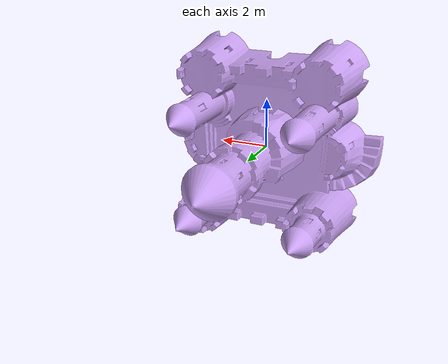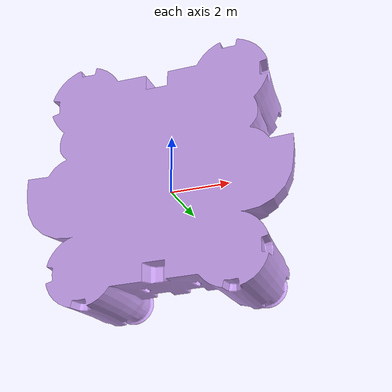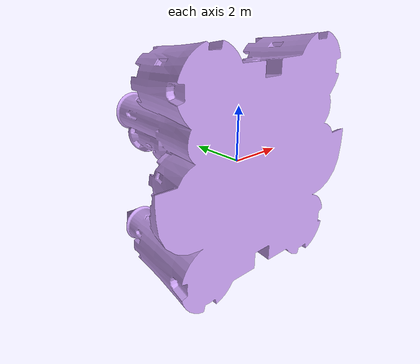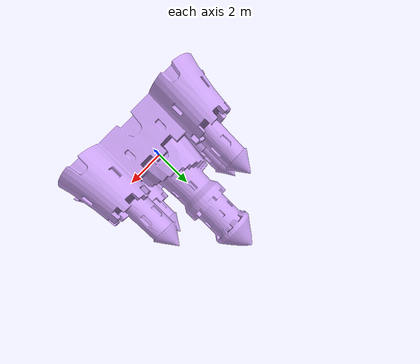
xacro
<?xml version="1.0" encoding="utf-8"?>
<robot xmlns:xacro="http://www.ros.org/wiki/xacro" name="sandcastle">
  <xacro:property name="mesh_scaling" value="0.01 0.01 0.01"/>

  <link name="sandcastle">
    <inertial>
      <origin xyz="0 0 0.5" rpy="0 0 0"/>
      <mass value="1"/>
      <inertia ixx="100"  ixy="0"  ixz="0" iyy="100" iyz="0" izz="100" />
    </inertial>

    <visual>
      <origin xyz="0 0 0" rpy="0 0 0" />
      <geometry>
        <mesh filename="package://heron_demo/urdf/sandcastle.stl" scale="${mesh_scaling}"/>
      </geometry>
      <material name="purple">
        <color rgba="0.7803921568627451 0.6235294117647059 0.9372549019607843 1.0" />
      </material>
    </visual>

    <collision>
      <origin xyz="0 0 0" rpy="0 0 0"/>
      <geometry>
        <box size="1 1 1" />
      </geometry>
    </collision>
  </link>

</robot>
